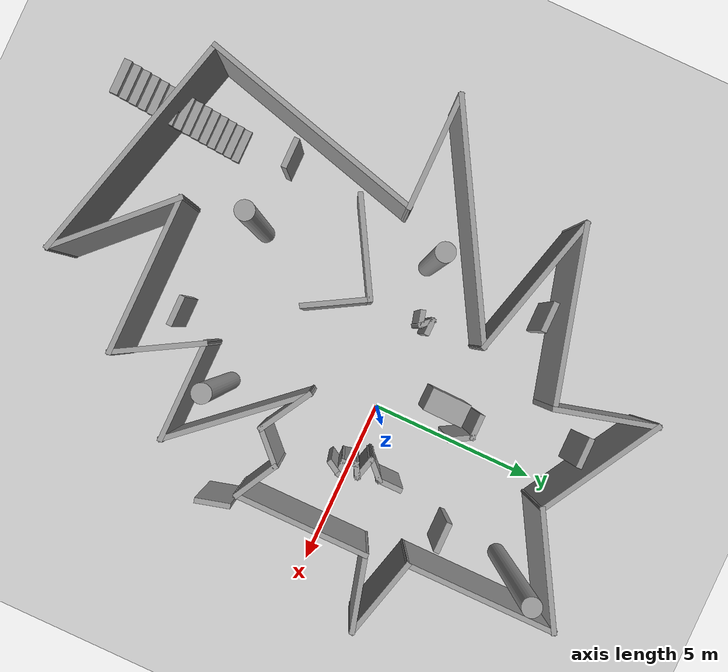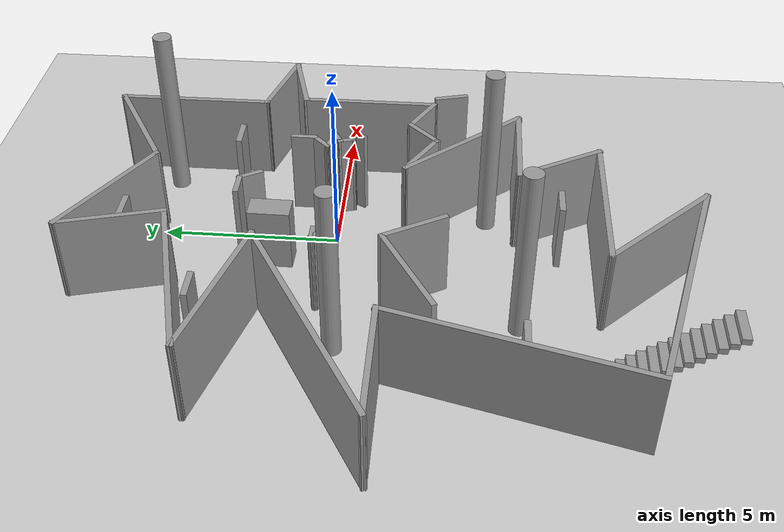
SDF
<sdf version="1.7">
 <world name="simple">
  <light name="sun" type="directional">
   <pose>0 0 10 0 -0 0</pose>
   <diffuse>0.8 0.8 0.8 1</diffuse>
   <specular>0.2 0.2 0.2 1</specular>
   <attenuation>
    <range>1000</range>
    <constant>0.9</constant>
    <linear>0.01</linear>
    <quadratic>0.001</quadratic>
   </attenuation>
   <direction>-0.5 0.1 -0.9</direction>
   <spot><inner_angle>0</inner_angle><outer_angle>0</outer_angle><falloff>0</falloff></spot>
  </light>
  <model name="ground_plane">
   <static>1</static>
   <link name="link">
    <collision name="collision">
     <geometry><plane><normal>0 0 1</normal><size>100 100</size></plane></geometry>
     <surface><friction><ode><mu>100</mu><mu2>50</mu2></ode></friction></surface>
    </collision>
    <visual name="visual">
     <cast_shadows>0</cast_shadows>
     <geometry><plane><normal>0 0 1</normal><size>100 100</size></plane></geometry>
     <material>
      <script><uri>file://media/materials/scripts/gazebo.material</uri><name>Gazebo/Grey</name></script>
     </material>
    </visual>
   </link>
  </model>
  <gravity>0 0 -9.8</gravity>
  <magnetic_field>6e-06 2.3e-05 -4.2e-05</magnetic_field>
  <atmosphere type="adiabatic"/>
  <physics type="ode">
   <max_step_size>0.001</max_step_size>
   <real_time_factor>1</real_time_factor>
   <real_time_update_rate>1000</real_time_update_rate>
  </physics>
  <scene><ambient>0.4 0.4 0.4 1</ambient><background>0.7 0.7 0.7 1</background><shadows>1</shadows></scene>
  <audio><device>default</device></audio>
  <spherical_coordinates>
   <surface_model>EARTH_WGS84</surface_model>
   <latitude_deg>43.5655</latitude_deg>
   <longitude_deg>1.474</longitude_deg>
   <elevation>150</elevation>
   <heading_deg>180</heading_deg>
  </spherical_coordinates>
  <model name="Untitled_0">
   <pose>-1.58015 -1.5727 0 0 -0 0</pose>
   <link name="Door_0">
    <collision name="Door_0_Collision">
     <geometry><box><size>0.9 0.17 2</size></box></geometry>
     <pose>0 0 1 0 -0 0</pose>
    </collision>
    <visual name="Door_0_Visual">
     <pose>0 0 1 0 -0 0</pose>
     <geometry><box><size>0.9 0.17 2</size></box></geometry>
     <material>
      <script><uri>file://media/materials/scripts/gazebo.material</uri><name>Gazebo/Grey</name></script>
     </material>
    </visual>
    <pose>3.97489 4.65505 0 0 -0 0</pose>
   </link>
   <link name="Door_1">
    <collision name="Door_1_Collision">
     <geometry><box><size>0.9 0.17 2</size></box></geometry>
     <pose>0 0 1 0 -0 0</pose>
    </collision>
    <visual name="Door_1_Visual">
     <pose>0 0 1 0 -0 0</pose>
     <geometry><box><size>0.9 0.17 2</size></box></geometry>
     <material>
      <script><uri>file://media/materials/scripts/gazebo.material</uri><name>Gazebo/Grey</name></script>
     </material>
    </visual>
    <pose>-3.92341 -3.64271 0 0 -0 0</pose>
   </link>
   <link name="Door_2">
    <collision name="Door_2_Collision">
     <geometry><box><size>0.9 0.17 2</size></box></geometry>
     <pose>0 0 1 0 -0 0</pose>
    </collision>
    <visual name="Door_2_Visual">
     <pose>0 0 1 0 -0 0</pose>
     <geometry><box><size>0.9 0.17 2</size></box></geometry>
     <material>
      <script><uri>file://media/materials/scripts/gazebo.material</uri><name>Gazebo/Grey</name></script>
     </material>
    </visual>
    <pose>-2.81591 4.78661 0 0 -0 0</pose>
   </link>
   <link name="Door_3">
    <collision name="Door_3_Collision">
     <geometry><box><size>0.9 0.17 2</size></box></geometry>
     <pose>0 0 1 0 -0 0</pose>
    </collision>
    <visual name="Door_3_Visual">
     <pose>0 0 1 0 -0 0</pose>
     <geometry><box><size>0.9 0.17 2</size></box></geometry>
     <material>
      <script><uri>file://media/materials/scripts/gazebo.material</uri><name>Gazebo/Grey</name></script>
     </material>
    </visual>
    <pose>0.198958 7.24772 0 0 -0 0</pose>
   </link>
   <link name="Door_4">
    <collision name="Door_4_Collision">
     <geometry><box><size>0.9 0.17 2</size></box></geometry>
     <pose>0 0 1 0 -0 0</pose>
    </collision>
    <visual name="Door_4_Visual">
     <pose>0 0 1 0 -0 0</pose>
     <geometry><box><size>0.9 0.17 2</size></box></geometry>
     <material>
      <script><uri>file://media/materials/scripts/gazebo.material</uri><name>Gazebo/Grey</name></script>
     </material>
    </visual>
    <pose>1.36799 -4.68868 0 0 -0 0</pose>
   </link>
   <link name="Stairs_1">
    <visual name="Stairs_1_Visual_0">
     <pose>-3.78297 -5.32165 0.083333 0 -0 0</pose>
     <geometry><box><size>1 0.233333 0.166667</size></box></geometry>
     <material>
      <script><uri>file://media/materials/scripts/gazebo.material</uri><name>Gazebo/Grey</name></script>
      <ambient>1 1 1 1</ambient>
     </material>
     <meta><layer>0</layer></meta>
    </visual>
    <collision name="Stairs_1_Collision_0">
     <geometry><box><size>1 0.233333 0.166667</size></box></geometry>
     <pose>-3.78297 -5.32165 0.083333 0 -0 0</pose>
    </collision>
    <visual name="Stairs_1_Visual_1">
     <pose>-3.78297 -5.55499 0.25 0 -0 0</pose>
     <geometry><box><size>1 0.233333 0.166667</size></box></geometry>
     <material>
      <script><uri>file://media/materials/scripts/gazebo.material</uri><name>Gazebo/Grey</name></script>
      <ambient>1 1 1 1</ambient>
     </material>
     <meta><layer>0</layer></meta>
    </visual>
    <collision name="Stairs_1_Collision_1">
     <geometry><box><size>1 0.233333 0.166667</size></box></geometry>
     <pose>-3.78297 -5.55499 0.25 0 -0 0</pose>
    </collision>
    <visual name="Stairs_1_Visual_2">
     <pose>-3.78297 -5.78832 0.416667 0 -0 0</pose>
     <geometry><box><size>1 0.233333 0.166667</size></box></geometry>
     <material>
      <script><uri>file://media/materials/scripts/gazebo.material</uri><name>Gazebo/Grey</name></script>
      <ambient>1 1 1 1</ambient>
     </material>
     <meta><layer>0</layer></meta>
    </visual>
    <collision name="Stairs_1_Collision_2">
     <geometry><box><size>1 0.233333 0.166667</size></box></geometry>
     <pose>-3.78297 -5.78832 0.416667 0 -0 0</pose>
    </collision>
    <visual name="Stairs_1_Visual_3">
     <pose>-3.78297 -6.02165 0.583333 0 -0 0</pose>
     <geometry><box><size>1 0.233333 0.166667</size></box></geometry>
     <material>
      <script><uri>file://media/materials/scripts/gazebo.material</uri><name>Gazebo/Grey</name></script>
      <ambient>1 1 1 1</ambient>
     </material>
     <meta><layer>0</layer></meta>
    </visual>
    <collision name="Stairs_1_Collision_3">
     <geometry><box><size>1 0.233333 0.166667</size></box></geometry>
     <pose>-3.78297 -6.02165 0.583333 0 -0 0</pose>
    </collision>
    <visual name="Stairs_1_Visual_4">
     <pose>-3.78297 -6.25499 0.75 0 -0 0</pose>
     <geometry><box><size>1 0.233333 0.166667</size></box></geometry>
     <material>
      <script><uri>file://media/materials/scripts/gazebo.material</uri><name>Gazebo/Grey</name></script>
      <ambient>1 1 1 1</ambient>
     </material>
     <meta><layer>0</layer></meta>
    </visual>
    <collision name="Stairs_1_Collision_4">
     <geometry><box><size>1 0.233333 0.166667</size></box></geometry>
     <pose>-3.78297 -6.25499 0.75 0 -0 0</pose>
    </collision>
    <visual name="Stairs_1_Visual_5">
     <pose>-3.78297 -6.48832 0.916667 0 -0 0</pose>
     <geometry><box><size>1 0.233333 0.166667</size></box></geometry>
     <material>
      <script><uri>file://media/materials/scripts/gazebo.material</uri><name>Gazebo/Grey</name></script>
      <ambient>1 1 1 1</ambient>
     </material>
     <meta><layer>0</layer></meta>
    </visual>
    <collision name="Stairs_1_Collision_5">
     <geometry><box><size>1 0.233333 0.166667</size></box></geometry>
     <pose>-3.78297 -6.48832 0.916667 0 -0 0</pose>
    </collision>
    <visual name="Stairs_1_Visual_6">
     <pose>-3.78297 -6.72165 1.08333 0 -0 0</pose>
     <geometry><box><size>1 0.233333 0.166667</size></box></geometry>
     <material>
      <script><uri>file://media/materials/scripts/gazebo.material</uri><name>Gazebo/Grey</name></script>
      <ambient>1 1 1 1</ambient>
     </material>
     <meta><layer>0</layer></meta>
    </visual>
    <collision name="Stairs_1_Collision_6">
     <geometry><box><size>1 0.233333 0.166667</size></box></geometry>
     <pose>-3.78297 -6.72165 1.08333 0 -0 0</pose>
    </collision>
    <visual name="Stairs_1_Visual_7">
     <pose>-3.78297 -6.95499 1.25 0 -0 0</pose>
     <geometry><box><size>1 0.233333 0.166667</size></box></geometry>
     <material>
      <script><uri>file://media/materials/scripts/gazebo.material</uri><name>Gazebo/Grey</name></script>
      <ambient>1 1 1 1</ambient>
     </material>
     <meta><layer>0</layer></meta>
    </visual>
    <collision name="Stairs_1_Collision_7">
     <geometry><box><size>1 0.233333 0.166667</size></box></geometry>
     <pose>-3.78297 -6.95499 1.25 0 -0 0</pose>
    </collision>
    <visual name="Stairs_1_Visual_8">
     <pose>-3.78297 -7.18832 1.41667 0 -0 0</pose>
     <geometry><box><size>1 0.233333 0.166667</size></box></geometry>
     <material>
      <script><uri>file://media/materials/scripts/gazebo.material</uri><name>Gazebo/Grey</name></script>
      <ambient>1 1 1 1</ambient>
     </material>
     <meta><layer>0</layer></meta>
    </visual>
    <collision name="Stairs_1_Collision_8">
     <geometry><box><size>1 0.233333 0.166667</size></box></geometry>
     <pose>-3.78297 -7.18832 1.41667 0 -0 0</pose>
    </collision>
    <visual name="Stairs_1_Visual_9">
     <pose>-3.78297 -7.42165 1.58333 0 -0 0</pose>
     <geometry><box><size>1 0.233333 0.166667</size></box></geometry>
     <material>
      <script><uri>file://media/materials/scripts/gazebo.material</uri><name>Gazebo/Grey</name></script>
      <ambient>1 1 1 1</ambient>
     </material>
     <meta><layer>0</layer></meta>
    </visual>
    <collision name="Stairs_1_Collision_9">
     <geometry><box><size>1 0.233333 0.166667</size></box></geometry>
     <pose>-3.78297 -7.42165 1.58333 0 -0 0</pose>
    </collision>
    <visual name="Stairs_1_Visual_10">
     <pose>-3.78297 -7.65499 1.75 0 -0 0</pose>
     <geometry><box><size>1 0.233333 0.166667</size></box></geometry>
     <material>
      <script><uri>file://media/materials/scripts/gazebo.material</uri><name>Gazebo/Grey</name></script>
      <ambient>1 1 1 1</ambient>
     </material>
     <meta><layer>0</layer></meta>
    </visual>
    <collision name="Stairs_1_Collision_10">
     <geometry><box><size>1 0.233333 0.166667</size></box></geometry>
     <pose>-3.78297 -7.65499 1.75 0 -0 0</pose>
    </collision>
    <visual name="Stairs_1_Visual_11">
     <pose>-3.78297 -7.88832 1.91667 0 -0 0</pose>
     <geometry><box><size>1 0.233333 0.166667</size></box></geometry>
     <material>
      <script><uri>file://media/materials/scripts/gazebo.material</uri><name>Gazebo/Grey</name></script>
      <ambient>1 1 1 1</ambient>
     </material>
     <meta><layer>0</layer></meta>
    </visual>
    <collision name="Stairs_1_Collision_11">
     <geometry><box><size>1 0.233333 0.166667</size></box></geometry>
     <pose>-3.78297 -7.88832 1.91667 0 -0 0</pose>
    </collision>
    <visual name="Stairs_1_Visual_12">
     <pose>-3.78297 -8.12166 2.08333 0 -0 0</pose>
     <geometry><box><size>1 0.233333 0.166667</size></box></geometry>
     <material>
      <script><uri>file://media/materials/scripts/gazebo.material</uri><name>Gazebo/Grey</name></script>
      <ambient>1 1 1 1</ambient>
     </material>
     <meta><layer>0</layer></meta>
    </visual>
    <collision name="Stairs_1_Collision_12">
     <geometry><box><size>1 0.233333 0.166667</size></box></geometry>
     <pose>-3.78297 -8.12166 2.08333 0 -0 0</pose>
    </collision>
    <visual name="Stairs_1_Visual_13">
     <pose>-3.78297 -8.35499 2.25 0 -0 0</pose>
     <geometry><box><size>1 0.233333 0.166667</size></box></geometry>
     <material>
      <script><uri>file://media/materials/scripts/gazebo.material</uri><name>Gazebo/Grey</name></script>
      <ambient>1 1 1 1</ambient>
     </material>
     <meta><layer>0</layer></meta>
    </visual>
    <collision name="Stairs_1_Collision_13">
     <geometry><box><size>1 0.233333 0.166667</size></box></geometry>
     <pose>-3.78297 -8.35499 2.25 0 -0 0</pose>
    </collision>
    <visual name="Stairs_1_Visual_14">
     <pose>-3.78297 -8.58832 2.41667 0 -0 0</pose>
     <geometry><box><size>1 0.233333 0.166667</size></box></geometry>
     <material>
      <script><uri>file://media/materials/scripts/gazebo.material</uri><name>Gazebo/Grey</name></script>
      <ambient>1 1 1 1</ambient>
     </material>
     <meta><layer>0</layer></meta>
    </visual>
    <collision name="Stairs_1_Collision_14">
     <geometry><box><size>1 0.233333 0.166667</size></box></geometry>
     <pose>-3.78297 -8.58832 2.41667 0 -0 0</pose>
    </collision>
   </link>
   <link name="Wall_0">
    <collision name="Wall_0_Collision">
     <geometry><box><size>1.75 0.15 2.5</size></box></geometry>
     <pose>0 0 1.25 0 -0 0</pose>
    </collision>
    <visual name="Wall_0_Visual">
     <pose>0 0 1.25 0 -0 0</pose>
     <geometry><box><size>1.75 0.15 2.5</size></box></geometry>
     <material>
      <script><uri>file://media/materials/scripts/gazebo.material</uri><name>Gazebo/Grey</name></script>
      <ambient>1 1 1 1</ambient>
     </material>
     <meta><layer>0</layer></meta>
    </visual>
    <pose>2.57298 -0.757299 0 0 -0 -0.523599</pose>
   </link>
   <link name="Wall_1">
    <collision name="Wall_1_Collision">
     <geometry><box><size>1.25 0.15 2.5</size></box></geometry>
     <pose>0 0 1.25 0 -0 0</pose>
    </collision>
    <visual name="Wall_1_Visual">
     <pose>0 0 1.25 0 -0 0</pose>
     <geometry><box><size>1.25 0.15 2.5</size></box></geometry>
     <material>
      <script><uri>file://media/materials/scripts/gazebo.material</uri><name>Gazebo/Grey</name></script>
      <ambient>1 1 1 1</ambient>
     </material>
     <meta><layer>0</layer></meta>
    </visual>
    <pose>3.6547 -0.768391 0 0 -0 0.785398</pose>
   </link>
   <link name="Wall_10">
    <collision name="Wall_10_Collision">
     <geometry><box><size>3.5 0.15 2.5</size></box></geometry>
     <pose>0 0 1.25 0 -0 0</pose>
    </collision>
    <visual name="Wall_10_Visual">
     <pose>0 0 1.25 0 -0 0</pose>
     <geometry><box><size>3.5 0.15 2.5</size></box></geometry>
     <material>
      <script><uri>file://media/materials/scripts/gazebo.material</uri><name>Gazebo/Grey</name></script>
      <ambient>1 1 1 1</ambient>
     </material>
     <meta><layer>0</layer></meta>
    </visual>
    <pose>3.49698 7.51504 0 0 -0 -2.61799</pose>
   </link>
   <link name="Wall_11">
    <collision name="Wall_11_Collision">
     <geometry><box><size>4 0.15 2.5</size></box></geometry>
     <pose>0 0 1.25 0 -0 0</pose>
    </collision>
    <visual name="Wall_11_Visual">
     <pose>0 0 1.25 0 -0 0</pose>
     <geometry><box><size>4 0.15 2.5</size></box></geometry>
     <material>
      <script><uri>file://media/materials/scripts/gazebo.material</uri><name>Gazebo/Grey</name></script>
      <ambient>1 1 1 1</ambient>
     </material>
     <meta><layer>0</layer></meta>
    </visual>
    <pose>0.379285 7.64004 0 0 -0 2.61799</pose>
   </link>
   <link name="Wall_12">
    <collision name="Wall_12_Collision">
     <geometry><box><size>3 0.15 2.5</size></box></geometry>
     <pose>0 0 1.25 0 -0 0</pose>
    </collision>
    <visual name="Wall_12_Visual">
     <pose>0 0 1.25 0 -0 0</pose>
     <geometry><box><size>3 0.15 2.5</size></box></geometry>
     <material>
      <script><uri>file://media/materials/scripts/gazebo.material</uri><name>Gazebo/Grey</name></script>
      <ambient>1 1 1 1</ambient>
     </material>
     <meta><layer>0</layer></meta>
    </visual>
    <pose>-0.918997 7.22609 0 0 -0 -1.309</pose>
   </link>
   <link name="Wall_13">
    <collision name="Wall_13_Collision">
     <geometry><box><size>5.25 0.15 2.5</size></box></geometry>
     <pose>0 0 1.25 0 -0 0</pose>
    </collision>
    <visual name="Wall_13_Visual">
     <pose>0 0 1.25 0 -0 0</pose>
     <geometry><box><size>5.25 0.15 2.5</size></box></geometry>
     <material>
      <script><uri>file://media/materials/scripts/gazebo.material</uri><name>Gazebo/Grey</name></script>
      <ambient>1 1 1 1</ambient>
     </material>
     <meta><layer>0</layer></meta>
    </visual>
    <pose>-3.01329 5.18966 0 0 -0 -2.87979</pose>
   </link>
   <link name="Wall_14">
    <collision name="Wall_14_Collision">
     <geometry><box><size>4.5 0.15 2.5</size></box></geometry>
     <pose>0 0 1.25 0 -0 0</pose>
    </collision>
    <visual name="Wall_14_Visual">
     <pose>0 0 1.25 0 -0 0</pose>
     <geometry><box><size>4.5 0.15 2.5</size></box></geometry>
     <material>
      <script><uri>file://media/materials/scripts/gazebo.material</uri><name>Gazebo/Grey</name></script>
      <ambient>1 1 1 1</ambient>
     </material>
     <meta><layer>0</layer></meta>
    </visual>
    <pose>-3.37551 3.96674 0 0 -0 -0.261799</pose>
   </link>
   <link name="Wall_15">
    <collision name="Wall_15_Collision">
     <geometry><box><size>7 0.15 2.5</size></box></geometry>
     <pose>0 0 1.25 0 -0 0</pose>
    </collision>
    <visual name="Wall_15_Visual">
     <pose>0 0 1.25 0 -0 0</pose>
     <geometry><box><size>7 0.15 2.5</size></box></geometry>
     <material>
      <script><uri>file://media/materials/scripts/gazebo.material</uri><name>Gazebo/Grey</name></script>
      <ambient>1 1 1 1</ambient>
     </material>
     <meta><layer>0</layer></meta>
    </visual>
    <pose>-4.24076 1.69131 0 0 -0 -2.61799</pose>
   </link>
   <link name="Wall_16">
    <collision name="Wall_16_Collision">
     <geometry><box><size>3.5 0.15 2.5</size></box></geometry>
     <pose>0 0 1.25 0 -0 0</pose>
    </collision>
    <visual name="Wall_16_Visual">
     <pose>0 0 1.25 0 -0 0</pose>
     <geometry><box><size>3.5 0.15 2.5</size></box></geometry>
     <material>
      <script><uri>file://media/materials/scripts/gazebo.material</uri><name>Gazebo/Grey</name></script>
      <ambient>1 1 1 1</ambient>
     </material>
     <meta><layer>0</layer></meta>
    </visual>
    <pose>-5.5319 -0.021193 0 0 -0 0</pose>
   </link>
   <link name="Wall_17">
    <collision name="Wall_17_Collision">
     <geometry><box><size>7 0.15 2.5</size></box></geometry>
     <pose>0 0 1.25 0 -0 0</pose>
    </collision>
    <visual name="Wall_17_Visual">
     <pose>0 0 1.25 0 -0 0</pose>
     <geometry><box><size>7 0.15 2.5</size></box></geometry>
     <material>
      <script><uri>file://media/materials/scripts/gazebo.material</uri><name>Gazebo/Grey</name></script>
      <ambient>1 1 1 1</ambient>
     </material>
     <meta><layer>0</layer></meta>
    </visual>
    <pose>-4.74335 -3.32949 0 0 -0 -1.8326</pose>
   </link>
   <link name="Wall_18">
    <collision name="Wall_18_Collision">
     <geometry><box><size>7.25 0.15 2.5</size></box></geometry>
     <pose>0 0 1.25 0 -0 0</pose>
    </collision>
    <visual name="Wall_18_Visual">
     <pose>0 0 1.25 0 -0 0</pose>
     <geometry><box><size>7.25 0.15 2.5</size></box></geometry>
     <material>
      <script><uri>file://media/materials/scripts/gazebo.material</uri><name>Gazebo/Grey</name></script>
      <ambient>1 1 1 1</ambient>
     </material>
     <meta><layer>0</layer></meta>
    </visual>
    <pose>-2.20077 -7.55659 0 0 -0 -0.261799</pose>
   </link>
   <link name="Wall_19">
    <collision name="Wall_19_Collision">
     <geometry><box><size>4 0.15 2.5</size></box></geometry>
     <pose>0 0 1.25 0 -0 0</pose>
    </collision>
    <visual name="Wall_19_Visual">
     <pose>0 0 1.25 0 -0 0</pose>
     <geometry><box><size>4 0.15 2.5</size></box></geometry>
     <material>
      <script><uri>file://media/materials/scripts/gazebo.material</uri><name>Gazebo/Grey</name></script>
      <ambient>1 1 1 1</ambient>
     </material>
     <meta><layer>0</layer></meta>
    </visual>
    <pose>-0.132915 -7.11422 0 0 -0 2.35619</pose>
   </link>
   <link name="Wall_20">
    <collision name="Wall_20_Collision">
     <geometry><box><size>4.75 0.15 2.5</size></box></geometry>
     <pose>0 0 1.25 0 -0 0</pose>
    </collision>
    <visual name="Wall_20_Visual">
     <pose>0 0 1.25 0 -0 0</pose>
     <geometry><box><size>4.75 0.15 2.5</size></box></geometry>
     <material>
      <script><uri>file://media/materials/scripts/gazebo.material</uri><name>Gazebo/Grey</name></script>
      <ambient>1 1 1 1</ambient>
     </material>
     <meta><layer>0</layer></meta>
    </visual>
    <pose>0.805904 -5.75304 0 0 -0 0</pose>
   </link>
   <link name="Wall_21">
    <collision name="Wall_21_Collision">
     <geometry><box><size>2.75 0.15 2.5</size></box></geometry>
     <pose>0 0 1.25 0 -0 0</pose>
    </collision>
    <visual name="Wall_21_Visual">
     <pose>0 0 1.25 0 -0 0</pose>
     <geometry><box><size>2.75 0.15 2.5</size></box></geometry>
     <material>
      <script><uri>file://media/materials/scripts/gazebo.material</uri><name>Gazebo/Grey</name></script>
      <ambient>1 1 1 1</ambient>
     </material>
     <meta><layer>0</layer></meta>
    </visual>
    <pose>2.4559 -4.62721 0 0 -0 2.0944</pose>
   </link>
   <link name="Wall_22">
    <collision name="Wall_22_Collision">
     <geometry><box><size>3 0.15 2.5</size></box></geometry>
     <pose>0 0 1.25 0 -0 0</pose>
    </collision>
    <visual name="Wall_22_Visual">
     <pose>0 0 1.25 0 -0 0</pose>
     <geometry><box><size>3 0.15 2.5</size></box></geometry>
     <material>
      <script><uri>file://media/materials/scripts/gazebo.material</uri><name>Gazebo/Grey</name></script>
      <ambient>1 1 1 1</ambient>
     </material>
     <meta><layer>0</layer></meta>
    </visual>
    <pose>3.2309 -3.50137 0 0 -0 0</pose>
   </link>
   <link name="Wall_23">
    <collision name="Wall_23_Collision">
     <geometry><box><size>4.34404 0.15 2.5</size></box></geometry>
     <pose>0 0 1.25 0 -0 0</pose>
    </collision>
    <visual name="Wall_23_Visual">
     <pose>0 0 1.25 0 -0 0</pose>
     <geometry><box><size>4.34404 0.15 2.5</size></box></geometry>
     <material>
      <script><uri>file://media/materials/scripts/gazebo.material</uri><name>Gazebo/Grey</name></script>
      <ambient>1 1 1 1</ambient>
     </material>
     <meta><layer>0</layer></meta>
    </visual>
    <pose>3.26803 -1.92934 0 0 -0 2.29406</pose>
   </link>
   <link name="Wall_25">
    <collision name="Wall_25_Collision">
     <geometry><box><size>3 0.15 2.5</size></box></geometry>
     <pose>0 0 1.25 0 -0 0</pose>
    </collision>
    <visual name="Wall_25_Visual">
     <pose>0 0 1.25 0 -0 0</pose>
     <geometry><box><size>3 0.15 2.5</size></box></geometry>
     <material>
      <script><uri>file://media/materials/scripts/gazebo.material</uri><name>Gazebo/Grey</name></script>
      <ambient>1 1 1 1</ambient>
     </material>
     <meta><layer>0</layer></meta>
    </visual>
    <pose>-2.38168 -0.653677 0 0 -0 0.523599</pose>
   </link>
   <link name="Wall_26">
    <collision name="Wall_26_Collision">
     <geometry><box><size>2 0.15 2.5</size></box></geometry>
     <pose>0 0 1.25 0 -0 0</pose>
    </collision>
    <visual name="Wall_26_Visual">
     <pose>0 0 1.25 0 -0 0</pose>
     <geometry><box><size>2 0.15 2.5</size></box></geometry>
     <material>
      <script><uri>file://media/materials/scripts/gazebo.material</uri><name>Gazebo/Grey</name></script>
      <ambient>1 1 1 1</ambient>
     </material>
     <meta><layer>0</layer></meta>
    </visual>
    <pose>-0.685098 -0.742251 0 0 -0 -1.0472</pose>
   </link>
   <link name="Wall_3">
    <collision name="Wall_3_Collision">
     <geometry><box><size>1.45234 0.15 2.5</size></box></geometry>
     <pose>0 0 1.25 0 -0 0</pose>
    </collision>
    <visual name="Wall_3_Visual">
     <pose>0 0 1.25 0 -0 0</pose>
     <geometry><box><size>1.45234 0.15 2.5</size></box></geometry>
     <material>
      <script><uri>file://media/materials/scripts/gazebo.material</uri><name>Gazebo/Grey</name></script>
      <ambient>1 1 1 1</ambient>
     </material>
     <meta><layer>0</layer></meta>
    </visual>
    <pose>4.61633 -0.689346 0 0 -0 2.64566</pose>
   </link>
   <link name="Wall_5">
    <collision name="Wall_5_Collision">
     <geometry><box><size>4 0.15 2.5</size></box></geometry>
     <pose>0 0 1.25 0 -0 0</pose>
    </collision>
    <visual name="Wall_5_Visual">
     <pose>0 0 1.25 0 -0 0</pose>
     <geometry><box><size>4 0.15 2.5</size></box></geometry>
     <material>
      <script><uri>file://media/materials/scripts/gazebo.material</uri><name>Gazebo/Grey</name></script>
      <ambient>1 1 1 1</ambient>
     </material>
     <meta><layer>0</layer></meta>
    </visual>
    <pose>5.18905 0.92579 0 0 -0 1.5708</pose>
   </link>
   <link name="Wall_6">
    <collision name="Wall_6_Collision">
     <geometry><box><size>2.25 0.15 2.5</size></box></geometry>
     <pose>0 0 1.25 0 -0 0</pose>
    </collision>
    <visual name="Wall_6_Visual">
     <pose>0 0 1.25 0 -0 0</pose>
     <geometry><box><size>2.25 0.15 2.5</size></box></geometry>
     <material>
      <script><uri>file://media/materials/scripts/gazebo.material</uri><name>Gazebo/Grey</name></script>
      <ambient>1 1 1 1</ambient>
     </material>
     <meta><layer>0</layer></meta>
    </visual>
    <pose>6.20327 3.12255 0 0 -0 0.261799</pose>
   </link>
   <link name="Wall_7">
    <collision name="Wall_7_Collision">
     <geometry><box><size>2.5 0.15 2.5</size></box></geometry>
     <pose>0 0 1.25 0 -0 0</pose>
    </collision>
    <visual name="Wall_7_Visual">
     <pose>0 0 1.25 0 -0 0</pose>
     <geometry><box><size>2.5 0.15 2.5</size></box></geometry>
     <material>
      <script><uri>file://media/materials/scripts/gazebo.material</uri><name>Gazebo/Grey</name></script>
      <ambient>1 1 1 1</ambient>
     </material>
     <meta><layer>0</layer></meta>
    </visual>
    <pose>6.08253 3.69842 0 0 -0 2.87979</pose>
   </link>
   <link name="Wall_9">
    <collision name="Wall_9_Collision">
     <geometry><box><size>4.5 0.15 2.5</size></box></geometry>
     <pose>0 0 1.25 0 -0 0</pose>
    </collision>
    <visual name="Wall_9_Visual">
     <pose>0 0 1.25 0 -0 0</pose>
     <geometry><box><size>4.5 0.15 2.5</size></box></geometry>
     <material>
      <script><uri>file://media/materials/scripts/gazebo.material</uri><name>Gazebo/Grey</name></script>
      <ambient>1 1 1 1</ambient>
     </material>
     <meta><layer>0</layer></meta>
    </visual>
    <pose>4.94757 6.17753 0 0 -0 1.5708</pose>
   </link>
   <static>1</static>
  </model>
  <model name="unit_cylinder">
   <pose>-3.30115 -5.15686 2.52746 0 -0 0.002954</pose>
   <link name="link">
    <inertial>
     <mass>1</mass>
     <inertia><ixx>0.145833</ixx><ixy>0</ixy><ixz>0</ixz><iyy>0.145833</iyy><iyz>0</iyz><izz>0.125</izz></inertia>
    </inertial>
    <collision name="collision">
     <geometry><cylinder><radius>0.263112</radius><length>5.05493</length></cylinder></geometry>
    </collision>
    <visual name="visual">
     <geometry><cylinder><radius>0.263112</radius><length>5.05493</length></cylinder></geometry>
     <material>
      <script><name>Gazebo/Grey</name><uri>file://media/materials/scripts/gazebo.material</uri></script>
     </material>
    </visual>
   </link>
  </model>
  <model name="unit_box">
   <pose>-0.919086 1.70759 0.919555 -1e-06 -0 -0.01441</pose>
   <link name="link">
    <inertial>
     <mass>1</mass>
     <inertia>
      <ixx>0.166667</ixx>
      <ixy>0</ixy>
      <ixz>0</ixz>
      <iyy>0.166667</iyy>
      <iyz>0</iyz>
      <izz>0.166667</izz>
     </inertia>
    </inertial>
    <collision name="collision"><geometry><box><size>0.684598 1.17343 1.83911</size></box></geometry></collision>
    <visual name="visual">
     <geometry><box><size>0.684598 1.17343 1.83911</size></box></geometry>
     <material>
      <script><name>Gazebo/Grey</name><uri>file://media/materials/scripts/gazebo.material</uri></script>
     </material>
    </visual>
   </link>
  </model>
  <model name="unit_cylinder_clone">
   <pose>-4.4116 -0.354305 2.52745 0 -0 0.00326</pose>
   <link name="link">
    <inertial>
     <mass>1</mass>
     <inertia><ixx>0.145833</ixx><ixy>0</ixy><ixz>0</ixz><iyy>0.145833</iyy><iyz>0</iyz><izz>0.125</izz></inertia>
    </inertial>
    <collision name="collision">
     <geometry><cylinder><radius>0.263112</radius><length>5.05493</length></cylinder></geometry>
    </collision>
    <visual name="visual">
     <geometry><cylinder><radius>0.263112</radius><length>5.05493</length></cylinder></geometry>
     <material>
      <script><name>Gazebo/Grey</name><uri>file://media/materials/scripts/gazebo.material</uri></script>
     </material>
    </visual>
   </link>
  </model>
  <model name="unit_cylinder_clone_0">
   <pose>2.45941 5.10549 2.52746 0 -0 0.002954</pose>
   <link name="link">
    <inertial>
     <mass>1</mass>
     <inertia><ixx>0.145833</ixx><ixy>0</ixy><ixz>0</ixz><iyy>0.145833</iyy><iyz>0</iyz><izz>0.125</izz></inertia>
    </inertial>
    <collision name="collision">
     <geometry><cylinder><radius>0.263112</radius><length>5.05493</length></cylinder></geometry>
    </collision>
    <visual name="visual">
     <geometry><cylinder><radius>0.263112</radius><length>5.05493</length></cylinder></geometry>
     <material>
      <script><name>Gazebo/Grey</name><uri>file://media/materials/scripts/gazebo.material</uri></script>
     </material>
    </visual>
   </link>
  </model>
  <model name="unit_cylinder_clone_1">
   <pose>1.12543 -4.25469 2.52746 0 -0 0.003046</pose>
   <link name="link">
    <inertial>
     <mass>1</mass>
     <inertia><ixx>0.145833</ixx><ixy>0</ixy><ixz>0</ixz><iyy>0.145833</iyy><iyz>0</iyz><izz>0.125</izz></inertia>
    </inertial>
    <collision name="collision">
     <geometry><cylinder><radius>0.263112</radius><length>5.05493</length></cylinder></geometry>
    </collision>
    <visual name="visual">
     <geometry><cylinder><radius>0.263112</radius><length>5.05493</length></cylinder></geometry>
     <material>
      <script><name>Gazebo/Grey</name><uri>file://media/materials/scripts/gazebo.material</uri></script>
     </material>
    </visual>
   </link>
  </model>
  <model name="Untitled">
   <pose>0.585054 -0.455914 0 0 -0 0</pose>
   <link name="Wall_0">
    <collision name="Wall_0_Collision">
     <geometry><box><size>1 0.15 2.5</size></box></geometry>
     <pose>0 0 1.25 0 -0 0</pose>
    </collision>
    <visual name="Wall_0_Visual">
     <pose>0 0 1.25 0 -0 0</pose>
     <geometry><box><size>1 0.15 2.5</size></box></geometry>
     <material>
      <script><uri>file://media/materials/scripts/gazebo.material</uri><name>Gazebo/Grey</name></script>
      <ambient>1 1 1 1</ambient>
     </material>
     <meta><layer>0</layer></meta>
    </visual>
    <pose>3.48112 -2.61884 0 0 -0 -1.309</pose>
   </link>
   <link name="Wall_14">
    <collision name="Wall_14_Collision">
     <geometry><box><size>0.75 0.15 2.5</size></box></geometry>
     <pose>0 0 1.25 0 -0 0</pose>
    </collision>
    <visual name="Wall_14_Visual">
     <pose>0 0 1.25 0 -0 0</pose>
     <geometry><box><size>0.75 0.15 2.5</size></box></geometry>
     <material>
      <script><uri>file://media/materials/scripts/gazebo.material</uri><name>Gazebo/Grey</name></script>
      <ambient>1 1 1 1</ambient>
     </material>
     <meta><layer>0</layer></meta>
    </visual>
    <pose>-1.3822 3.01876 0 0 -0 0</pose>
   </link>
   <link name="Wall_15">
    <collision name="Wall_15_Collision">
     <geometry><box><size>0.75 0.15 2.5</size></box></geometry>
     <pose>0 0 1.25 0 -0 0</pose>
    </collision>
    <visual name="Wall_15_Visual">
     <pose>0 0 1.25 0 -0 0</pose>
     <geometry><box><size>0.75 0.15 2.5</size></box></geometry>
     <material>
      <script><uri>file://media/materials/scripts/gazebo.material</uri><name>Gazebo/Grey</name></script>
      <ambient>1 1 1 1</ambient>
     </material>
     <meta><layer>0</layer></meta>
    </visual>
    <pose>-0.932197 2.75895 0 0 -0 -1.0472</pose>
   </link>
   <link name="Wall_17">
    <collision name="Wall_17_Collision">
     <geometry><box><size>0.5 0.15 2.5</size></box></geometry>
     <pose>0 0 1.25 0 -0 0</pose>
    </collision>
    <visual name="Wall_17_Visual">
     <pose>0 0 1.25 0 -0 0</pose>
     <geometry><box><size>0.5 0.15 2.5</size></box></geometry>
     <material>
      <script><uri>file://media/materials/scripts/gazebo.material</uri><name>Gazebo/Grey</name></script>
      <ambient>1 1 1 1</ambient>
     </material>
     <meta><layer>0</layer></meta>
    </visual>
    <pose>-3.32553 0.724495 0 0 -0 3.14159</pose>
   </link>
   <link name="Wall_18">
    <collision name="Wall_18_Collision">
     <geometry><box><size>0.5 0.15 2.5</size></box></geometry>
     <pose>0 0 1.25 0 -0 0</pose>
    </collision>
    <visual name="Wall_18_Visual">
     <pose>0 0 1.25 0 -0 0</pose>
     <geometry><box><size>0.5 0.15 2.5</size></box></geometry>
     <material>
      <script><uri>file://media/materials/scripts/gazebo.material</uri><name>Gazebo/Grey</name></script>
      <ambient>1 1 1 1</ambient>
     </material>
     <meta><layer>0</layer></meta>
    </visual>
    <pose>-3.37678 0.600752 0 0 -0 -0.785398</pose>
   </link>
   <link name="Wall_19">
    <collision name="Wall_19_Collision">
     <geometry><box><size>0.5 0.15 2.5</size></box></geometry>
     <pose>0 0 1.25 0 -0 0</pose>
    </collision>
    <visual name="Wall_19_Visual">
     <pose>0 0 1.25 0 -0 0</pose>
     <geometry><box><size>0.5 0.15 2.5</size></box></geometry>
     <material>
      <script><uri>file://media/materials/scripts/gazebo.material</uri><name>Gazebo/Grey</name></script>
      <ambient>1 1 1 1</ambient>
     </material>
     <meta><layer>0</layer></meta>
    </visual>
    <pose>-3.42208 0.431715 0 0 -0 -2.87979</pose>
   </link>
   <link name="Wall_3">
    <collision name="Wall_3_Collision">
     <geometry><box><size>0.5 0.15 2.5</size></box></geometry>
     <pose>0 0 1.25 0 -0 0</pose>
    </collision>
    <visual name="Wall_3_Visual">
     <pose>0 0 1.25 0 -0 0</pose>
     <geometry><box><size>0.5 0.15 2.5</size></box></geometry>
     <material>
      <script><uri>file://media/materials/scripts/gazebo.material</uri><name>Gazebo/Grey</name></script>
      <ambient>1 1 1 1</ambient>
     </material>
     <meta><layer>0</layer></meta>
    </visual>
    <pose>1.23814 -0.018794 0 0 -0 1.0472</pose>
   </link>
   <link name="Wall_4">
    <collision name="Wall_4_Collision">
     <geometry><box><size>0.5 0.15 2.5</size></box></geometry>
     <pose>0 0 1.25 0 -0 0</pose>
    </collision>
    <visual name="Wall_4_Visual">
     <pose>0 0 1.25 0 -0 0</pose>
     <geometry><box><size>0.5 0.15 2.5</size></box></geometry>
     <material>
      <script><uri>file://media/materials/scripts/gazebo.material</uri><name>Gazebo/Grey</name></script>
      <ambient>1 1 1 1</ambient>
     </material>
     <meta><layer>0</layer></meta>
    </visual>
    <pose>1.15064 0.13276 0 0 -0 3.14159</pose>
   </link>
   <link name="Wall_5">
    <collision name="Wall_5_Collision">
     <geometry><box><size>0.5 0.15 2.5</size></box></geometry>
     <pose>0 0 1.25 0 -0 0</pose>
    </collision>
    <visual name="Wall_5_Visual">
     <pose>0 0 1.25 0 -0 0</pose>
     <geometry><box><size>0.5 0.15 2.5</size></box></geometry>
     <material>
      <script><uri>file://media/materials/scripts/gazebo.material</uri><name>Gazebo/Grey</name></script>
      <ambient>1 1 1 1</ambient>
     </material>
     <meta><layer>0</layer></meta>
    </visual>
    <pose>0.930348 0.301797 0 0 -0 1.8326</pose>
   </link>
   <link name="Wall_6">
    <collision name="Wall_6_Collision">
     <geometry><box><size>0.5 0.15 2.5</size></box></geometry>
     <pose>0 0 1.25 0 -0 0</pose>
    </collision>
    <visual name="Wall_6_Visual">
     <pose>0 0 1.25 0 -0 0</pose>
     <geometry><box><size>0.5 0.15 2.5</size></box></geometry>
     <material>
      <script><uri>file://media/materials/scripts/gazebo.material</uri><name>Gazebo/Grey</name></script>
      <ambient>1 1 1 1</ambient>
     </material>
     <meta><layer>0</layer></meta>
    </visual>
    <pose>1.03661 0.558334 0 0 -0 0.523599</pose>
   </link>
   <link name="Wall_7">
    <collision name="Wall_7_Collision">
     <geometry><box><size>0.75 0.15 2.5</size></box></geometry>
     <pose>0 0 1.25 0 -0 0</pose>
    </collision>
    <visual name="Wall_7_Visual">
     <pose>0 0 1.25 0 -0 0</pose>
     <geometry><box><size>0.75 0.15 2.5</size></box></geometry>
     <material>
      <script><uri>file://media/materials/scripts/gazebo.material</uri><name>Gazebo/Grey</name></script>
      <ambient>1 1 1 1</ambient>
     </material>
     <meta><layer>0</layer></meta>
    </visual>
    <pose>0.898386 0.72348 0 0 -0 2.87979</pose>
   </link>
   <link name="Wall_8">
    <collision name="Wall_8_Collision">
     <geometry><box><size>0.75 0.15 2.5</size></box></geometry>
     <pose>0 0 1.25 0 -0 0</pose>
    </collision>
    <visual name="Wall_8_Visual">
     <pose>0 0 1.25 0 -0 0</pose>
     <geometry><box><size>0.75 0.15 2.5</size></box></geometry>
     <material>
      <script><uri>file://media/materials/scripts/gazebo.material</uri><name>Gazebo/Grey</name></script>
      <ambient>1 1 1 1</ambient>
     </material>
     <meta><layer>0</layer></meta>
    </visual>
    <pose>0.82074 1.01326 0 0 -0 0.785398</pose>
   </link>
   <link name="Wall_9">
    <collision name="Wall_9_Collision">
     <geometry><box><size>0.75 0.15 2.5</size></box></geometry>
     <pose>0 0 1.25 0 -0 0</pose>
    </collision>
    <visual name="Wall_9_Visual">
     <pose>0 0 1.25 0 -0 0</pose>
     <geometry><box><size>0.75 0.15 2.5</size></box></geometry>
     <material>
      <script><uri>file://media/materials/scripts/gazebo.material</uri><name>Gazebo/Grey</name></script>
      <ambient>1 1 1 1</ambient>
     </material>
     <meta><layer>0</layer></meta>
    </visual>
    <pose>1.03287 1.52539 0 0 -0 1.5708</pose>
   </link>
   <static>1</static>
  </model>
 </world>
</sdf>
